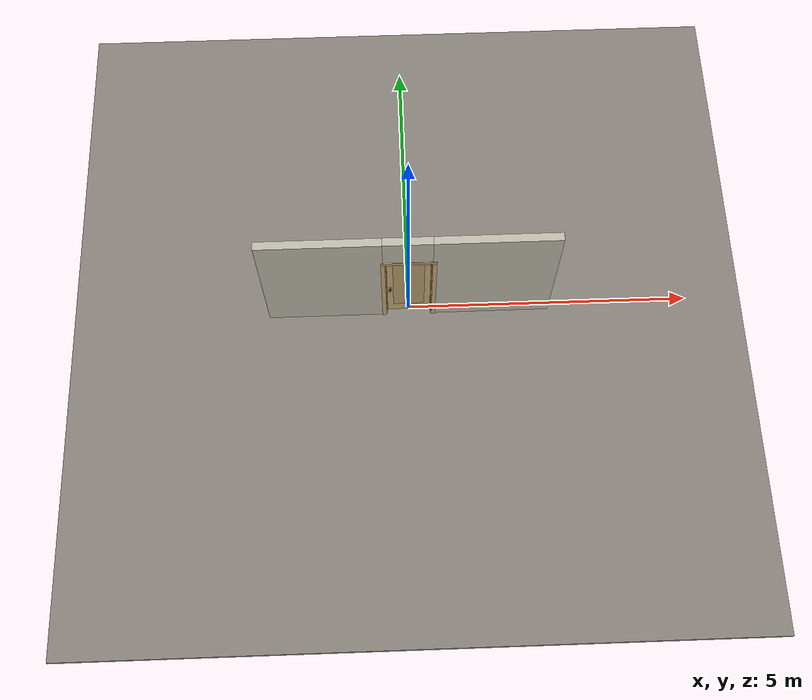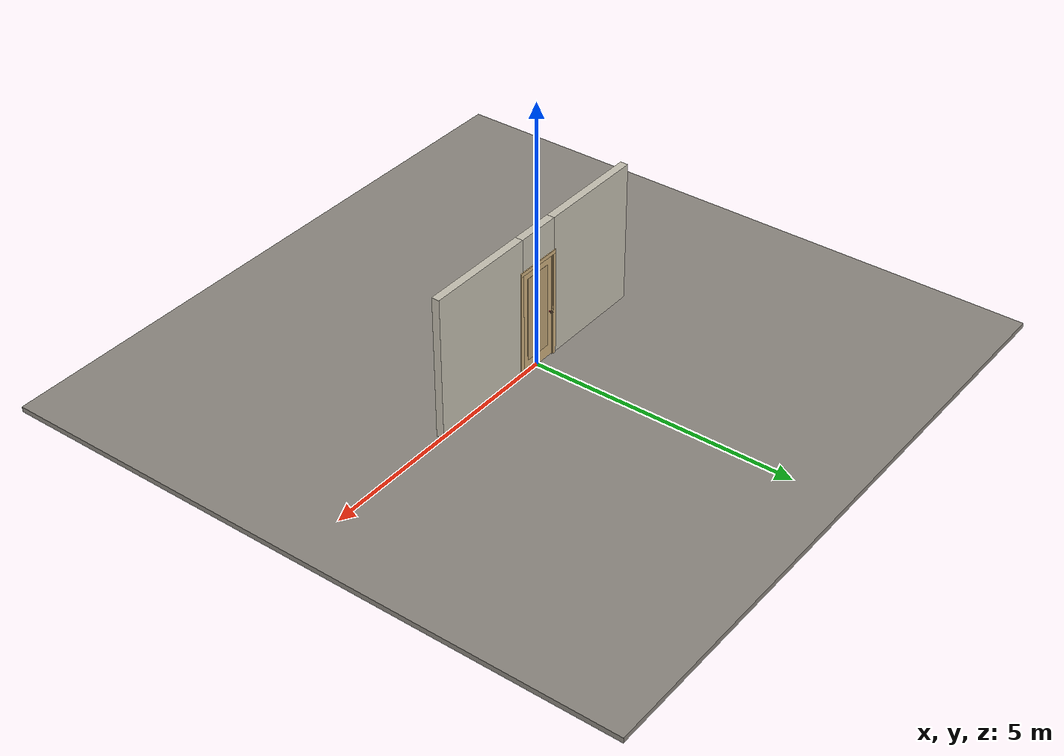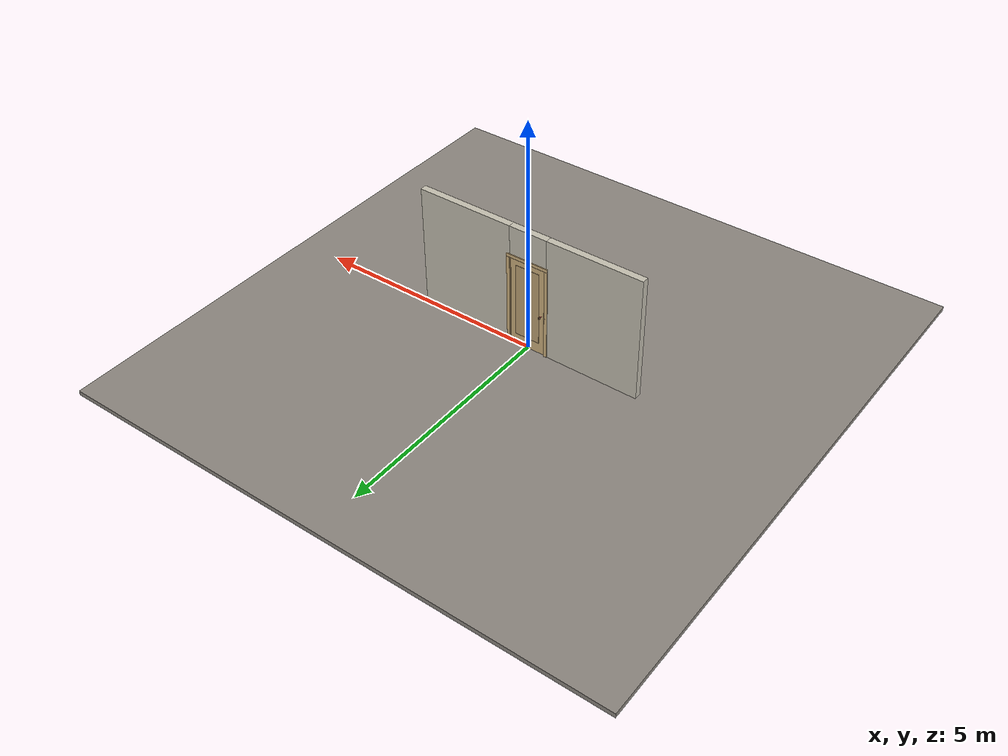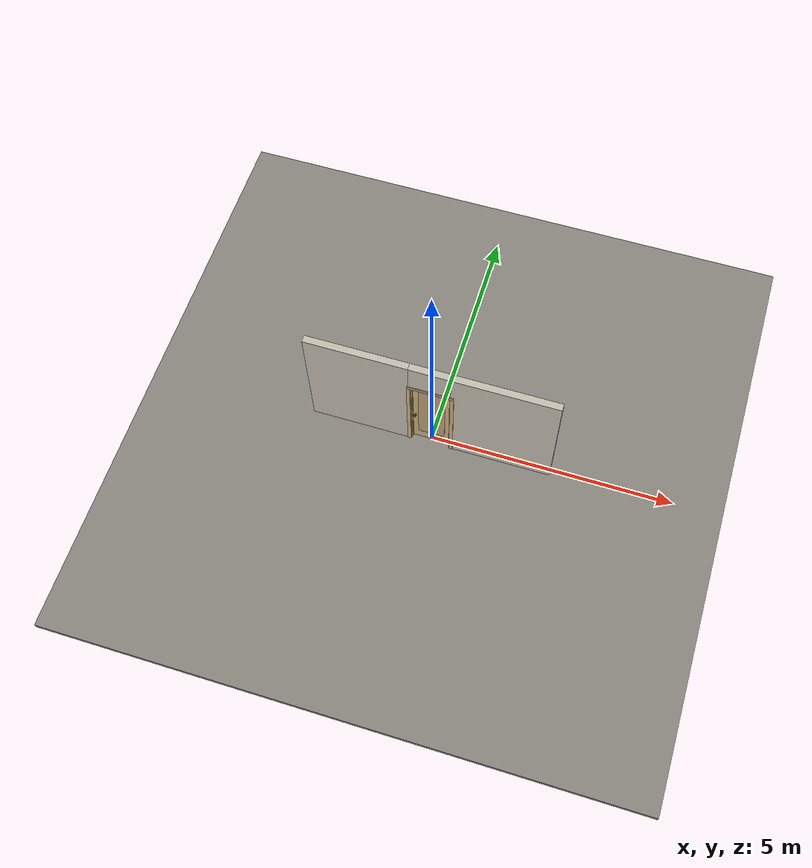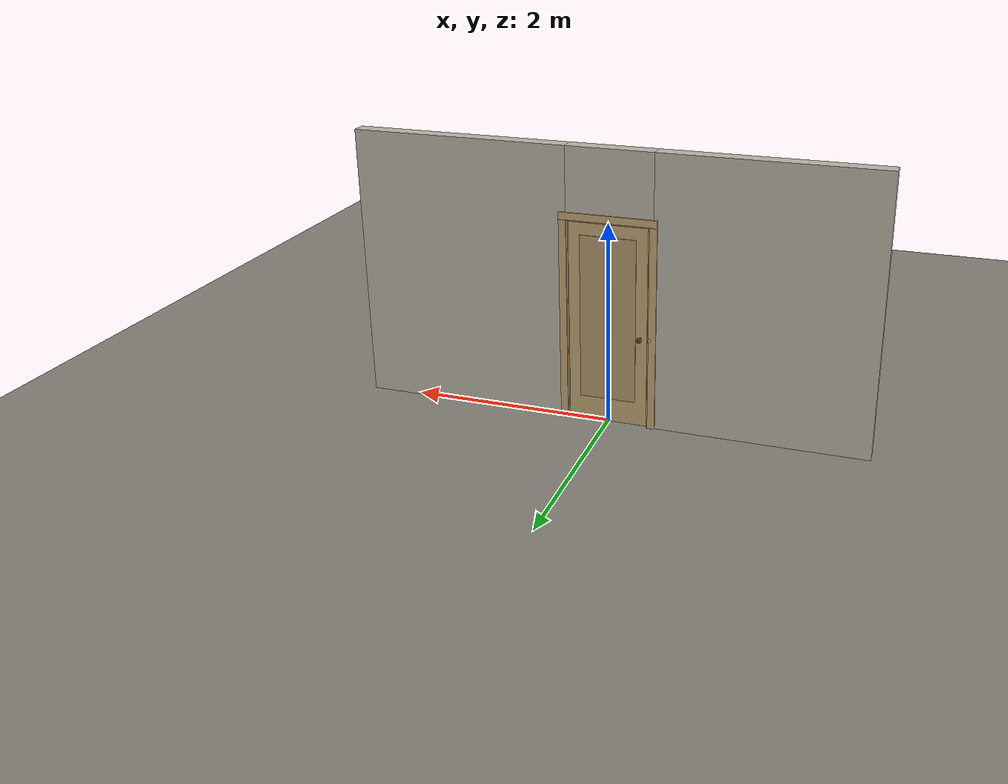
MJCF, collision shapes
<?xml version="1.0" ?>
<mujoco model="db0688_swing_single_full">
  <compiler angle="radian" meshdir="../../hardware" texturedir="../../textures" autolimits="true" inertiafromgeom="false"/>
  <option timestep="0.002" integrator="implicitfast" cone="elliptic" impratio="10" noslip_iterations="3">
    <flag multiccd="enable"/>
  </option>
  <size memory="16M"/>
  <default>
    <geom condim="4" solref="0.005 1" solimp="0.95 0.99 0.001"/>
    <joint solreflimit="0.005 1" solimplimit="0.95 0.99 0.001"/>
    <tendon solreflimit="0.005 1"/>
    <equality solref="0.002 1"/>
  </default>
  <visual>
    <headlight ambient="0.4 0.4 0.4" diffuse="0.7 0.7 0.7" specular="0.2 0.2 0.2"/>
    <quality shadowsize="4096"/>
    <map znear="0.01" zfar="60"/>
  </visual>
  <asset>
    <mesh name="hinge_2af0f4d6ca" file="hinge_2af0f4d6ca.obj"/>
    <mesh name="hinge_jamb_c0c0a62ada" file="hinge_jamb_c0c0a62ada.obj"/>
    <mesh name="knob_0ebdbe0e4b" file="knob_0ebdbe0e4b.obj"/>
    <material name="mat_floor" rgba="0.55 0.53 0.5 1" specular="0.2" shininess="0.15" reflectance="0"/>
    <material name="mat_wall" rgba="0.78 0.76 0.7 1" specular="0.2" shininess="0.1" reflectance="0"/>
    <material name="mat_leaf" rgba="0.82 0.7 0.5 1" specular="0.2" shininess="0.45" reflectance="0"/>
    <material name="mat_leaf_panel" rgba="0.754 0.644 0.46 1" specular="0.2" shininess="0.45" reflectance="0"/>
    <material name="mat_hinge" rgba="0.65 0.66 0.68 1" specular="0.74" shininess="0.5" reflectance="0.36"/>
    <material name="mat_op_bronze" rgba="0.3 0.22 0.15 1" specular="0.74" shininess="0.5" reflectance="0.36"/>
    <material name="mat_trim" rgba="0.85 0.66 0.3 1" specular="0.8" shininess="0.75" reflectance="0.4"/>
    <material name="mat_bolt" rgba="0.85 0.66 0.3 1" specular="0.8" shininess="0.75" reflectance="0.4"/>
    <material name="mat_frame" rgba="0.82 0.7 0.5 1" specular="0.2" shininess="0.45" reflectance="0"/>
    <texture name="skybox" type="skybox" builtin="gradient" rgb1="0.6 0.7 0.85" rgb2="0.9 0.92 0.95" width="256" height="256"/>
  </asset>
  <worldbody>
    <light name="sun" pos="1.5 -2.5 4" dir="-0.3 0.5 -0.8" directional="true" diffuse="0.8 0.8 0.8" specular="0.3 0.3 0.3" castshadow="true"/>
    <light name="fill" pos="-1.5 2.5 3" dir="0.3 -0.5 -0.7" directional="true" diffuse="0.35 0.35 0.4" castshadow="false"/>
    <camera name="robot_view" pos="0 -2.541625 1.698475" xyaxes="1 0 0 0 0.26963 0.962964" fovy="52"/>
    <camera name="far_view" pos="0 2.454625 1.698475" xyaxes="-1 0 0 0 -0.26963 0.962964" fovy="52"/>
    <camera name="iso" pos="-1.898575 -2.141925 2.098175" xyaxes="0.741536 -0.670913 0 0.242917 0.268487 0.932151" fovy="46"/>
    <camera name="detail_handle" pos="-0.14 -0.874 1.194" xyaxes="0.97561 0.219512 0 -0.070934 0.315262 0.94635" fovy="38"/>
    <geom name="floor" type="box" size="6 6 0.05" pos="0 0 -0.05" material="mat_floor" group="0" contype="1" conaffinity="1" friction="0.8 0.005 0.0001" density="2400"/>
    <geom name="wall_left" type="box" size="1.033 0.0725 1.35" pos="-1.467 -0.0435 1.35" material="mat_wall" group="0" contype="1" conaffinity="1" friction="0.6 0.005 0.0001" density="800"/>
    <geom name="wall_right" type="box" size="1.048 0.0725 1.35" pos="1.452 -0.0435 1.35" material="mat_wall" group="0" contype="1" conaffinity="1" friction="0.6 0.005 0.0001" density="800"/>
    <geom name="wall_header" type="box" size="0.419 0.0725 0.3265" pos="-0.015 -0.0435 2.3735" material="mat_wall" group="0" contype="1" conaffinity="1" friction="0.6 0.005 0.0001" density="800"/>
    <geom name="hinge_0_jamb" type="mesh" mesh="hinge_jamb_c0c0a62ada" pos="0.382 0.029 0.259" quat="0 0 0 1" material="mat_hinge" group="1" contype="0" conaffinity="0" density="7850"/>
    <geom name="hinge_1_jamb" type="mesh" mesh="hinge_jamb_c0c0a62ada" pos="0.382 0.029 1.0015" quat="0 0 0 1" material="mat_hinge" group="1" contype="0" conaffinity="0" density="7850"/>
    <geom name="hinge_2_jamb" type="mesh" mesh="hinge_jamb_c0c0a62ada" pos="0.382 0.029 1.814" quat="0 0 0 1" material="mat_hinge" group="1" contype="0" conaffinity="0" density="7850"/>
    <geom name="jamb_hinge" type="box" size="0.0095 0.0725 0.999" pos="0.3945 -0.0435 0.999" material="mat_frame" group="0" contype="1" conaffinity="1" friction="0.6 0.005 0.0001" density="400"/>
    <geom name="strike_914_wall_n" type="box" size="0.0245 0.054075 0.0167" pos="-0.4095 -0.061925 0.914" material="mat_frame" group="0" contype="1" conaffinity="1" friction="0.6 0.005 0.0001" density="400"/>
    <geom name="strike_914_wall_p" type="box" size="0.0245 0.008 0.0167" pos="-0.4095 0.01585 0.914" material="mat_frame" group="0" contype="1" conaffinity="1" friction="0.6 0.005 0.0001" density="400"/>
    <geom name="strike_914_ramp" type="box" size="0.0245 0.01649 0.0167" pos="-0.414136 0.028673 0.914" quat="0.977148 0 0 0.212558" material="mat_frame" group="0" contype="1" conaffinity="1" friction="0.12 0.005 0.0001" density="400"/>
    <geom name="strike_914_back" type="box" size="0.01615 0.00785 0.0167" pos="-0.41785 0 0.914" material="mat_frame" group="0" contype="1" conaffinity="1" friction="0.6 0.005 0.0001" density="400"/>
    <geom name="jamb_strike_0" type="box" size="0.0245 0.0725 0.44865" pos="-0.4095 -0.0435 0.44865" material="mat_frame" group="0" contype="1" conaffinity="1" friction="0.6 0.005 0.0001" density="400"/>
    <geom name="jamb_strike_1" type="box" size="0.0245 0.0725 0.53365" pos="-0.4095 -0.0435 1.46435" material="mat_frame" group="0" contype="1" conaffinity="1" friction="0.6 0.005 0.0001" density="400"/>
    <geom name="jamb_head" type="box" size="0.419 0.0725 0.0095" pos="-0.015 -0.0435 2.0075" material="mat_frame" group="0" contype="1" conaffinity="1" friction="0.6 0.005 0.0001" density="400"/>
    <geom name="head_stud" type="box" size="0.419 0.0725 0.015" pos="-0.015 -0.0435 2.032" material="mat_wall" group="0" contype="1" conaffinity="1" friction="0.6 0.005 0.0001" density="500"/>
    <geom name="stop_hinge" type="box" size="0.0055 0.016 0.999" pos="0.3795 -0.0385 0.999" material="mat_frame" group="0" contype="1" conaffinity="1" friction="0.6 0.005 0.0001" density="400"/>
    <geom name="stop_strike" type="box" size="0.0055 0.016 0.999" pos="-0.3795 -0.0385 0.999" material="mat_frame" group="0" contype="1" conaffinity="1" friction="0.6 0.005 0.0001" density="400"/>
    <geom name="stop_head" type="box" size="0.385 0.016 0.0055" pos="0 -0.0385 1.9925" material="mat_frame" group="0" contype="1" conaffinity="1" friction="0.6 0.005 0.0001" density="400"/>
    <geom name="casing_l_n" type="box" size="0.035 0.008 1.0085" pos="-0.434 -0.124 0.999" material="mat_frame" group="2" contype="0" conaffinity="0" density="400"/>
    <geom name="casing_r_n" type="box" size="0.035 0.008 1.0085" pos="0.434 -0.124 0.999" material="mat_frame" group="2" contype="0" conaffinity="0" density="400"/>
    <geom name="casing_h_n" type="box" size="0.469 0.008 0.035" pos="0 -0.124 2.047" material="mat_frame" group="2" contype="0" conaffinity="0" density="400"/>
    <geom name="casing_l_p" type="box" size="0.035 0.008 1.0085" pos="-0.434 0.037 0.999" material="mat_frame" group="2" contype="0" conaffinity="0" density="400"/>
    <geom name="casing_r_p" type="box" size="0.035 0.008 1.0085" pos="0.434 0.037 0.999" material="mat_frame" group="2" contype="0" conaffinity="0" density="400"/>
    <geom name="casing_h_p" type="box" size="0.469 0.008 0.035" pos="0 0.037 2.047" material="mat_frame" group="2" contype="0" conaffinity="0" density="400"/>
    <site name="approach_point" pos="0 -1.5 0" quat="1 0 0 0" size="0.05" rgba="0.2 0.9 0.2 0.5" group="4"/>
    <site name="goal_point" pos="0 1.5 0" quat="1 0 0 0" size="0.05" rgba="0.2 0.9 0.2 0.5" group="4"/>
    <site name="door_plane_center" pos="0 0 0.999" quat="1 0 0 0" size="0.02" rgba="0.2 0.9 0.2 0.5" group="4"/>
    <body name="leaf" pos="0.385 0 0">
      <inertial pos="-0.377677 0.000264 1.001878" mass="26.742576" quat="0.499657 0.50064 -0.49935 0.500352" diaginertia="1.342825967 8.814805505 10.148707155"/>
      <joint name="leaf_hinge" type="hinge" axis="0 0 -1" pos="-0.003 0.029 0" limited="true" range="0 1.919862" damping="0.170864" frictionloss="1.671326" armature="0.02"/>
      <geom name="leaf_slab" type="box" size="0.381 0.022 0.9925" pos="-0.384 0 1.0015" material="mat_leaf" group="0" contype="1" conaffinity="1" friction="0.35 0.005 0.0001" density="1"/>
      <geom name="leaf_panel_0_n" type="box" size="0.271 0.003 0.8137" pos="-0.384 -0.025 1.06105" material="mat_leaf_panel" group="1" contype="0" conaffinity="0" density="1"/>
      <geom name="leaf_panel_0_p" type="box" size="0.271 0.003 0.8137" pos="-0.384 0.025 1.06105" material="mat_leaf_panel" group="1" contype="0" conaffinity="0" density="1"/>
      <geom name="hinge_0" type="mesh" mesh="hinge_2af0f4d6ca" pos="-0.003 0.029 0.259" quat="0 0 0 1" material="mat_hinge" group="1" contype="0" conaffinity="0" density="7850"/>
      <geom name="hinge_1" type="mesh" mesh="hinge_2af0f4d6ca" pos="-0.003 0.029 1.0015" quat="0 0 0 1" material="mat_hinge" group="1" contype="0" conaffinity="0" density="7850"/>
      <geom name="hinge_2" type="mesh" mesh="hinge_2af0f4d6ca" pos="-0.003 0.029 1.814" quat="0 0 0 1" material="mat_hinge" group="1" contype="0" conaffinity="0" density="7850"/>
      <geom name="leaf_latch_bolt_faceplate" type="box" size="0.0006 0.01235 0.0267" pos="-0.7644 0 0.914" material="mat_bolt" group="1" contype="0" conaffinity="0" density="8500"/>
      <site name="leaf_edge_mid" pos="-0.765 0 0.9925" quat="1 0 0 0" size="0.02" rgba="0.2 0.9 0.2 0.5" group="4"/>
      <body name="leaf_handle" pos="-0.705 0 0.914">
        <inertial pos="0 -0.000456 0" mass="1.227237" quat="0.5 0.5 0.5 0.5" diaginertia="0.000321361 0.005547069 0.005547069"/>
        <joint name="leaf_handle_hinge" type="hinge" axis="0 1 0" limited="true" range="0 0.87" damping="0.143676" frictionloss="0.039" stiffness="0.5" springref="-0.5" armature="0.01"/>
        <geom name="leaf_handle_spindle" type="cylinder" size="0.006 0.03" pos="0 0 0" quat="0.707107 -0.707107 0 0" material="mat_op_bronze" group="1" contype="0" conaffinity="0" density="7850"/>
        <geom name="leaf_handle_knob_n" type="mesh" mesh="knob_0ebdbe0e4b" pos="0 -0.022 0" quat="0 0 -0.707107 0.707107" material="mat_op_bronze" group="1" contype="0" conaffinity="0" density="3000"/>
        <geom name="leaf_handle_knob_col_n" type="sphere" size="0.0252" pos="0 -0.074 0" material="mat_op_bronze" group="0" contype="1" conaffinity="1" friction="0.9 0.01 0.0001" density="3000"/>
        <geom name="leaf_handle_knob_neck_n" type="cylinder" size="0.011 0.012" pos="0 -0.034 0" quat="0.707107 -0.707107 0 0" material="mat_op_bronze" group="3" contype="1" conaffinity="1" rgba="0.8 0.3 0.3 0.25" friction="0.6 0.005 0.0001" density="3000"/>
        <geom name="leaf_handle_turn_button_n" type="cylinder" size="0.005 0.005" pos="0 -0.1004 0" quat="0.707107 -0.707107 0 0" material="mat_trim" group="1" contype="0" conaffinity="0" density="7100"/>
        <geom name="leaf_handle_knob_p" type="mesh" mesh="knob_0ebdbe0e4b" pos="0 0.022 0" quat="0 0 0.707107 0.707107" material="mat_op_bronze" group="1" contype="0" conaffinity="0" density="3000"/>
        <geom name="leaf_handle_knob_col_p" type="sphere" size="0.0252" pos="0 0.074 0" material="mat_op_bronze" group="0" contype="1" conaffinity="1" friction="0.9 0.01 0.0001" density="3000"/>
        <geom name="leaf_handle_knob_neck_p" type="cylinder" size="0.011 0.012" pos="0 0.034 0" quat="0.707107 -0.707107 0 0" material="mat_op_bronze" group="3" contype="1" conaffinity="1" rgba="0.8 0.3 0.3 0.25" friction="0.6 0.005 0.0001" density="3000"/>
        <site name="leaf_handle_grip_n" pos="0 -0.074 0" quat="1 0 0 0" size="0.012" rgba="0.2 0.9 0.2 0.5" group="4"/>
        <site name="leaf_handle_grip_p" pos="0 0.074 0" quat="1 0 0 0" size="0.012" rgba="0.2 0.9 0.2 0.5" group="4"/>
      </body>
      <body name="leaf_latch_bolt" pos="-0.765 0 0.914">
        <inertial pos="0.00865 0 0" mass="0.041419" quat="0.92388 0.382683 0 0" diaginertia="0.000000798 0.000005598 0.000005598"/>
        <joint name="leaf_latch_bolt_slide" type="slide" axis="1 0 0" limited="true" range="0 0.0127" damping="2" frictionloss="0.3" stiffness="300" springref="-0.008333" armature="0.1"/>
        <geom name="leaf_latch_bolt_capsule" type="capsule" size="0.00635 0.015" pos="0.00865 0 0" quat="0.707107 0 -0.707107 0" material="mat_bolt" group="0" contype="1" conaffinity="1" friction="0.2 0.005 0.0001" density="8500"/>
      </body>
    </body>
  </worldbody>
  <tendon>
    <fixed name="leaf_latch_bolt_coupling" limited="true" range="0 10">
      <joint joint="leaf_latch_bolt_slide" coef="1"/>
      <joint joint="leaf_handle_hinge" coef="-0.015679"/>
    </fixed>
  </tendon>
  <sensor>
    <jointpos name="leaf_hinge_pos" joint="leaf_hinge"/>
    <jointvel name="leaf_hinge_vel" joint="leaf_hinge"/>
    <jointpos name="leaf_handle_hinge_pos" joint="leaf_handle_hinge"/>
    <jointvel name="leaf_handle_hinge_vel" joint="leaf_handle_hinge"/>
    <jointpos name="leaf_latch_bolt_slide_pos" joint="leaf_latch_bolt_slide"/>
    <jointvel name="leaf_latch_bolt_slide_vel" joint="leaf_latch_bolt_slide"/>
  </sensor>
</mujoco>
